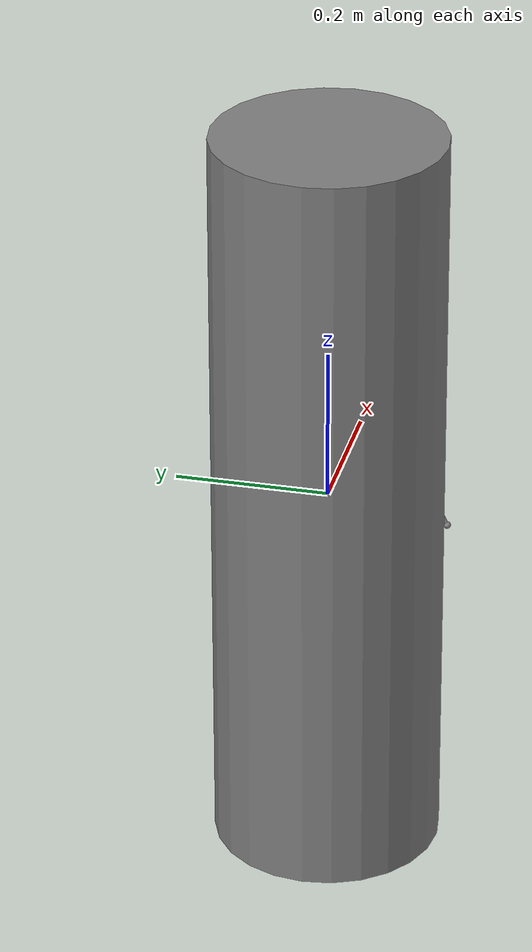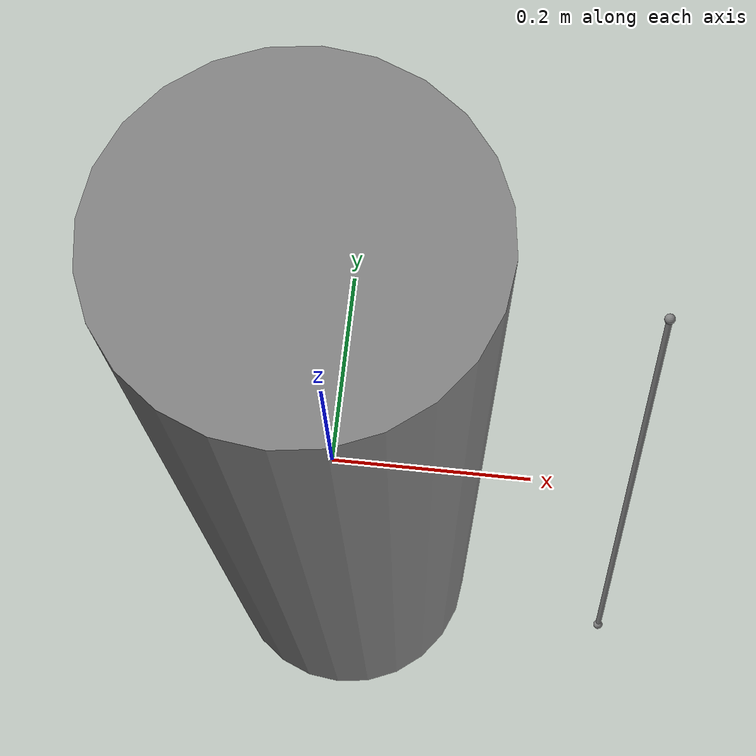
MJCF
<mujoco>
  <worldbody>
    <body name="b0">
      <geom name="wrap_cyl" type="cylinder" size="0.15 0.5"/>
      <site name="s1" pos="0.3 0.1 0.2"/>
      <site name="side_c" pos="0.05 0 0"/>
      <body name="b1">
        <joint name="j1" type="hinge" axis="0 0 1"/>
        <geom type="sphere" size="0.01" mass="0.1"/>
        <site name="s2" pos="0.3 -0.1 -0.2"/>
      </body>
    </body>
  </worldbody>
  <tendon>
    <spatial name="t_inside_cyl">
      <site site="s1"/>
      <geom geom="wrap_cyl" sidesite="side_c"/>
      <site site="s2"/>
    </spatial>
  </tendon>
</mujoco>
